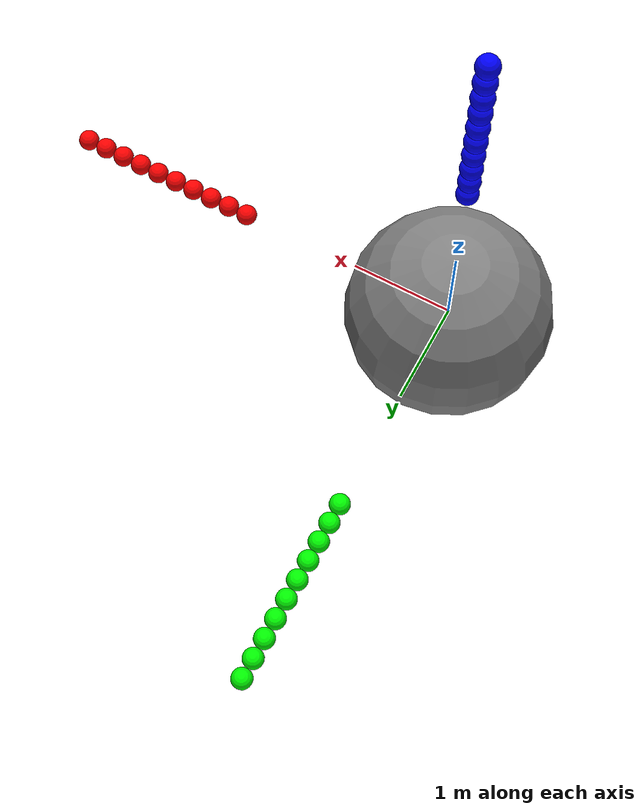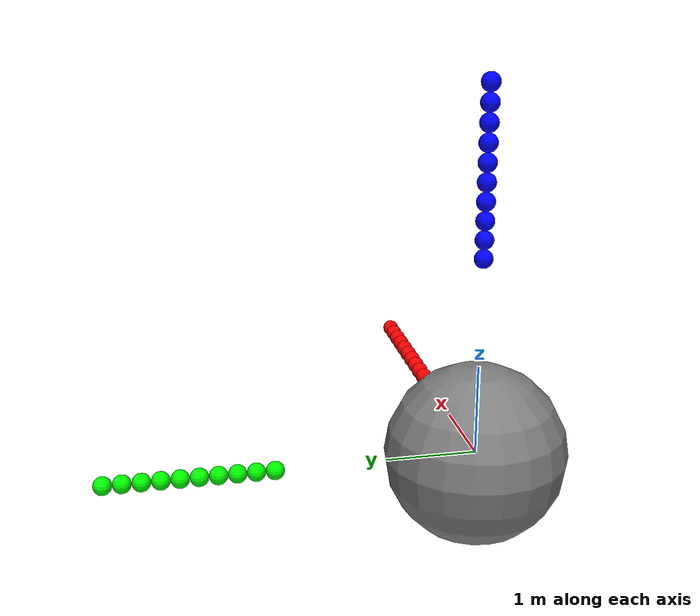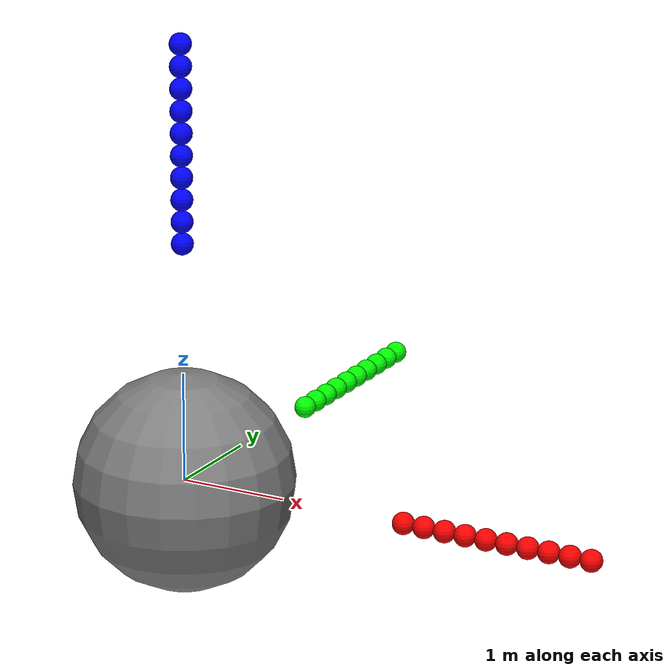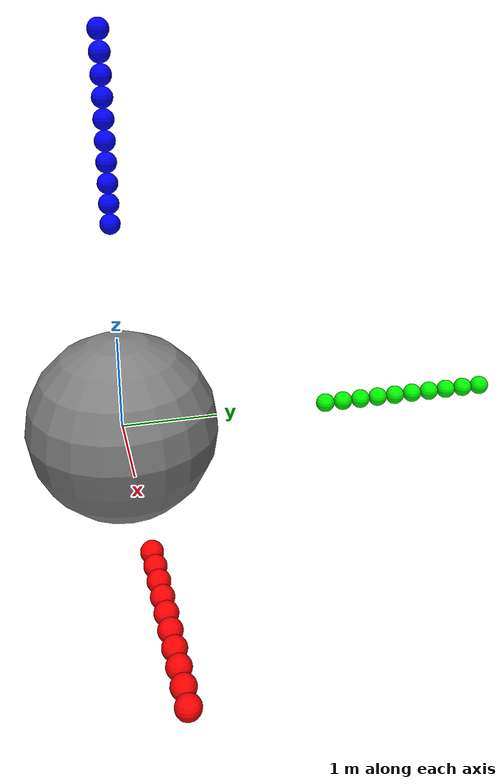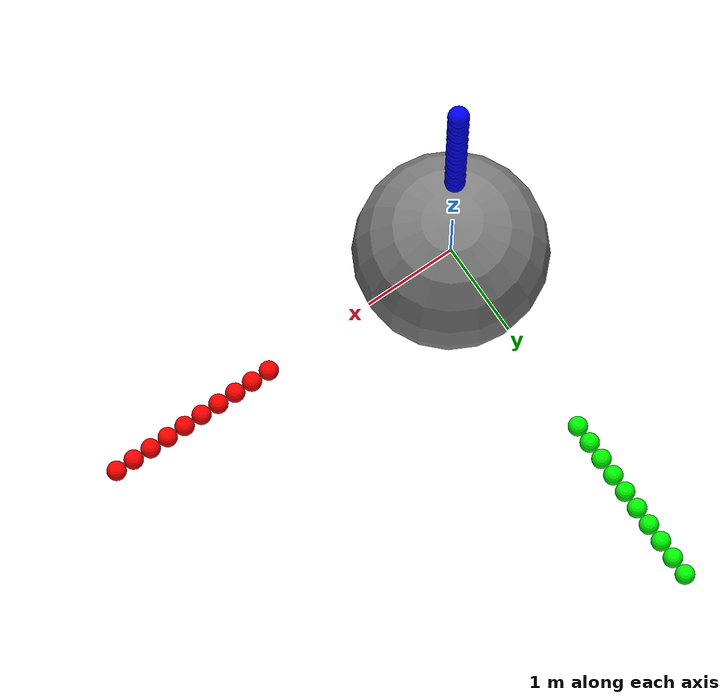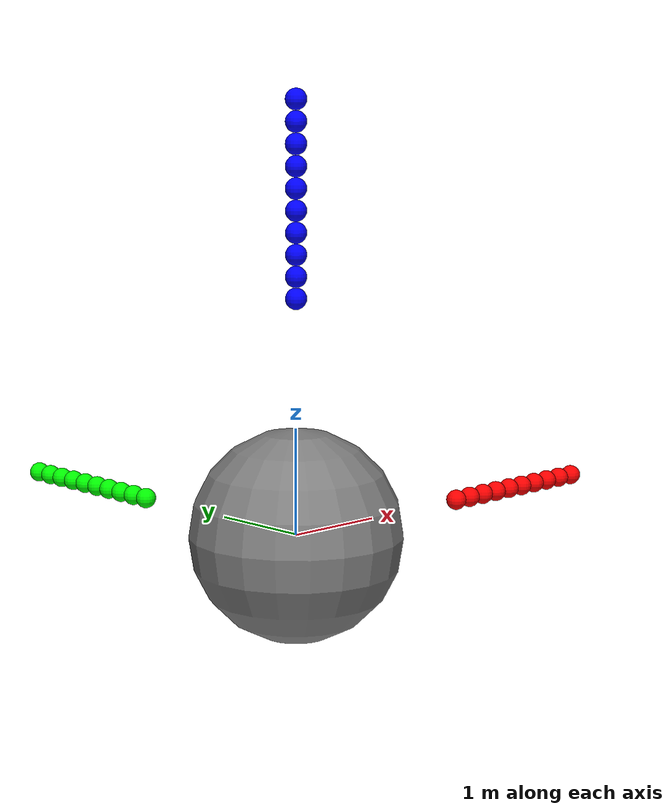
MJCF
<mujoco model="Sphere Axes">
  <worldbody>
    <!-- center -->
    <geom size="1.0"/>

    <!-- x-axis -->
    <geom pos="2.2 0 0" size=".1" rgba="1 0 0 1"/>
    <geom pos="2.4 0 0" size=".1" rgba="1 0 0 1"/>
    <geom pos="2.6 0 0" size=".1" rgba="1 0 0 1"/>
    <geom pos="2.8 0 0" size=".1" rgba="1 0 0 1"/>
    <geom pos="3.0 0 0" size=".1" rgba="1 0 0 1"/>
    <geom pos="3.2 0 0" size=".1" rgba="1 0 0 1"/>
    <geom pos="3.4 0 0" size=".1" rgba="1 0 0 1"/>
    <geom pos="3.6 0 0" size=".1" rgba="1 0 0 1"/>
    <geom pos="3.8 0 0" size=".1" rgba="1 0 0 1"/>
    <geom pos="4.0 0 0" size=".1" rgba="1 0 0 1"/>

    <!-- y-axis -->
    <geom pos="0 2.2 0" size=".1" rgba="0 1 0 1"/>
    <geom pos="0 2.4 0" size=".1" rgba="0 1 0 1"/>
    <geom pos="0 2.6 0" size=".1" rgba="0 1 0 1"/>
    <geom pos="0 2.8 0" size=".1" rgba="0 1 0 1"/>
    <geom pos="0 3.0 0" size=".1" rgba="0 1 0 1"/>
    <geom pos="0 3.2 0" size=".1" rgba="0 1 0 1"/>
    <geom pos="0 3.4 0" size=".1" rgba="0 1 0 1"/>
    <geom pos="0 3.6 0" size=".1" rgba="0 1 0 1"/>
    <geom pos="0 3.8 0" size=".1" rgba="0 1 0 1"/>
    <geom pos="0 4.0 0" size=".1" rgba="0 1 0 1"/>

    <!-- z-axis -->
    <geom pos="0 0 2.2" size=".1" rgba="0 0 1 1"/>
    <geom pos="0 0 2.4" size=".1" rgba="0 0 1 1"/>
    <geom pos="0 0 2.6" size=".1" rgba="0 0 1 1"/>
    <geom pos="0 0 2.8" size=".1" rgba="0 0 1 1"/>
    <geom pos="0 0 3.0" size=".1" rgba="0 0 1 1"/>
    <geom pos="0 0 3.2" size=".1" rgba="0 0 1 1"/>
    <geom pos="0 0 3.4" size=".1" rgba="0 0 1 1"/>
    <geom pos="0 0 3.6" size=".1" rgba="0 0 1 1"/>
    <geom pos="0 0 3.8" size=".1" rgba="0 0 1 1"/>
    <geom pos="0 0 4.0" size=".1" rgba="0 0 1 1"/>
  </worldbody>
</mujoco>
